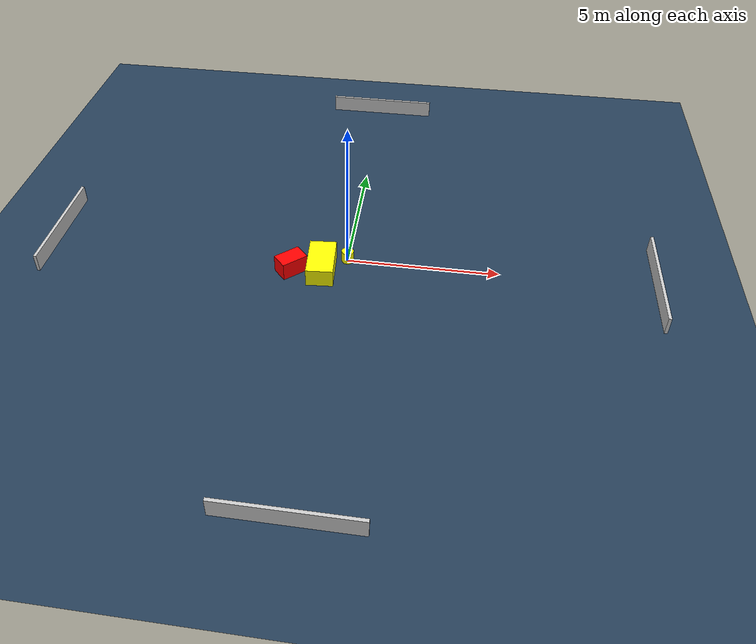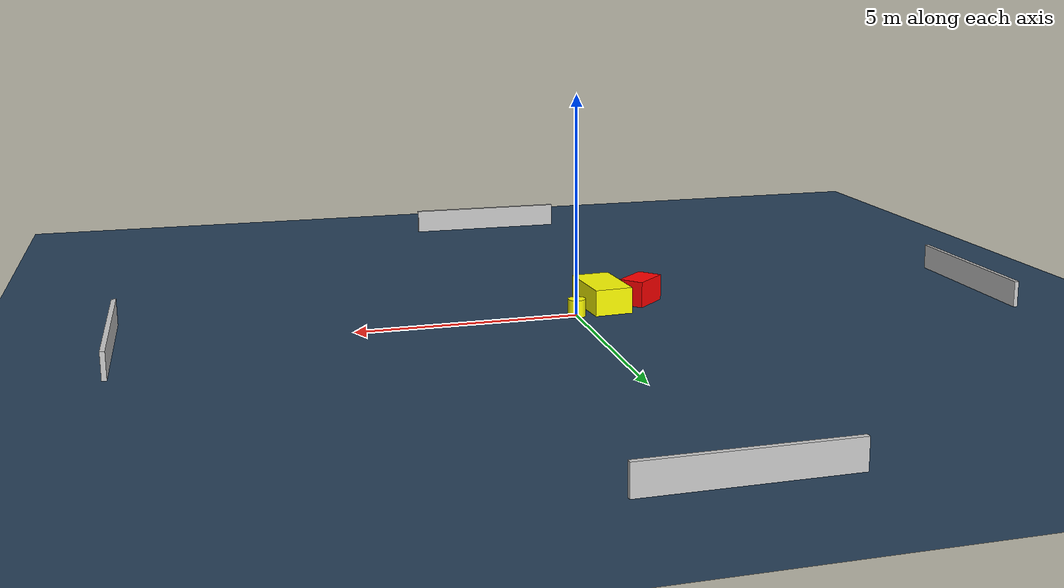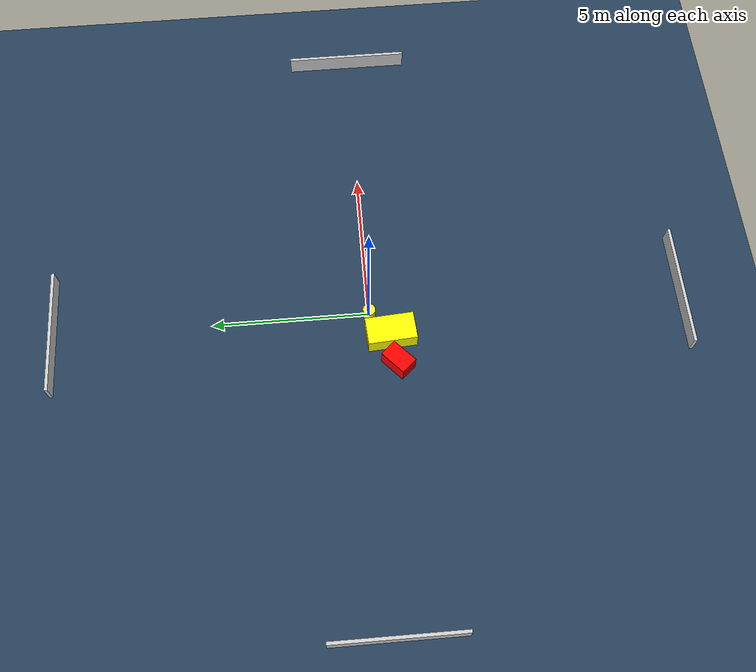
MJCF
<?xml version="1.0" ?>
<mujoco model="generated_environment">
  <option timestep="0.01" integrator="RK4" cone="elliptic"/>
  <default>
    <geom density="1"/>
  </default>
  <asset>
    <texture builtin="gradient" height="3072" name="skybox" rgb1="0.3 0.5 0.7" rgb2="0 0 0" type="skybox" width="512"/>
    <texture builtin="checker" height="300" name="groundplane" rgb1="0.2 0.3 0.4" rgb2="0.1 0.2 0.3" type="2d" width="300"/>
    <material name="groundplane" reflectance="0.2" texrepeat="5 5" texture="groundplane"/>
  </asset>
  <worldbody>
    <light dir="0 0 -1" directional="true" pos="0 0 1.5"/>
    <geom condim="3" friction="0.5 0.005 0.001" material="groundplane" name="floor" pos="0 0 0" size="0 0 0.05" type="plane"/>
    <body name="walls">
      <geom name="wall_1" condim="4" pos="-10.0 0.0 0.3" rgba="0.800000011920929 0.800000011920929 0.800000011920929 1.0" size="0.05 2.0 0.3" type="box"/>
      <geom name="wall_2" condim="4" pos="10.0 0.0 0.3" rgba="0.800000011920929 0.800000011920929 0.800000011920929 1.0" size="0.05 2.0 0.3" type="box"/>
      <geom name="wall_3" condim="4" pos="0.0 -10.0 0.3" rgba="0.800000011920929 0.800000011920929 0.800000011920929 1.0" size="2.0 0.05 0.3" type="box"/>
      <geom name="wall_4" condim="4" pos="0.0 10.0 0.3" rgba="0.800000011920929 0.800000011920929 0.800000011920929 1.0" size="2.0 0.05 0.3" type="box"/>
    </body>
    <body name="robot">
      <joint name="joint_x" type="slide" pos="0 0 0" axis="1 0 0"/>
      <joint name="joint_y" type="slide" pos="0 0 0" axis="0 1 0"/>
      <geom name="robot" type="cylinder" pos="0.0 0.0 0.2" size="0.2 0.2 0.0" mass="5.0" friction="1.0 0.005 0.0001" condim="4" rgba="1.0 1.0 0.0 1.0"/>
    </body>
    <body name="obstacle_1_movable">
      <geom name="obstacle_1_movable" condim="4" pos="-0.779616692124354 -0.6225362241009833 0.3" euler="0 0 274.14354082517434" friction="0.0 0.005 0.001" rgba="1.0 1.0 0.0 1.0" size="0.7726234683016422 0.4418963943767226 0.3" type="box" mass="0.1"/>
      <joint type="free"/>
    </body>
    <body name="obstacle_2_static">
      <geom name="obstacle_2_static" condim="4" pos="-1.766933093125651 -0.7673842048137498 0.3" euler="0 0 312.30174718314754" friction="0.0 0.005 0.001" rgba="1.0 0.0 0.0 1.0" size="0.29125330202523025 0.45115238734783625 0.3" type="box"/>
    </body>
  </worldbody>
  <actuator>
    <motor name="actuator_x" joint="joint_x" gear="1" ctrlrange="-1 1"/>
    <motor name="actuator_y" joint="joint_y" gear="1" ctrlrange="-1 1"/>
  </actuator>
</mujoco>
